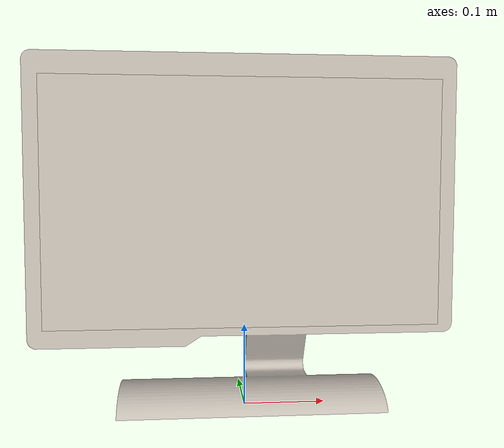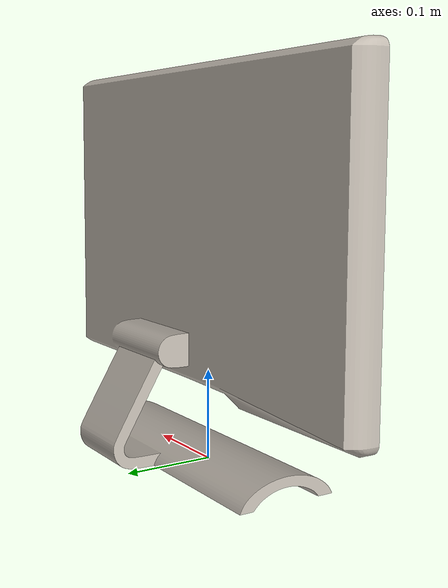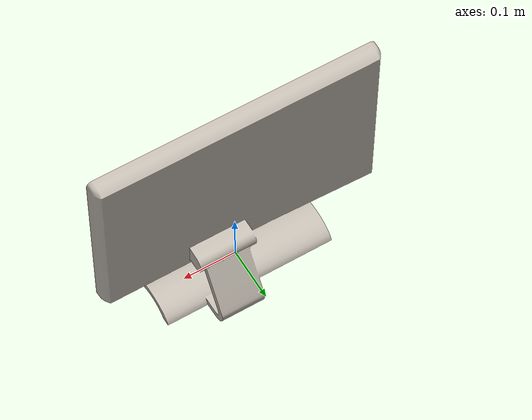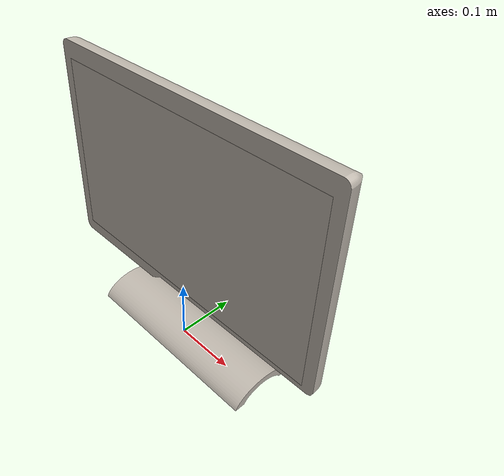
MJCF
<mujoco model="monitor">
  <asset>
    <mesh file="meshes/monitor.obj" name="monitor_mesh" scale="0.012 0.012 0.012"/>
    <texture file="../textures/monitor.png" name="tex-monitor" type="2d"/>
    <material name="monitor" reflectance="0.5" texrepeat="1 1" texture="tex-monitor" texuniform="true"/>

    <texture file="../textures/screen4.png" name="tex-screen" type="cube"/>
    <material name="screen" reflectance="0.5" texrepeat="1 0.01" texture="tex-screen" texuniform="true"/>
  </asset>
  <worldbody>
    <body>
      <body name="object">
        <geom pos="0 0 0" mesh="monitor_mesh" type="mesh" solimp="0.998 0.998 0.001" solref="0.001 1" density="100" friction="0.95 0.3 0.1" material="monitor" group="0" condim="4"/>
        <site pos="0 -0.005 0.25" name="screen" size="0.245 0.0001 0.153" type="box" material="screen" group="0"/>
      </body>

      <site rgba="0 0 0 0" size="0.005" pos="0 0 -0.085" name="bottom_site"/>
      <site rgba="0 0 0 0" size="0.005" pos="0 0 0.075" name="top_site"/>
      <site rgba="0 0 0 0" size="0.005" pos="0.025 0.025 0" name="horizontal_radius_site"/>
    </body>
  </worldbody>
</mujoco>
